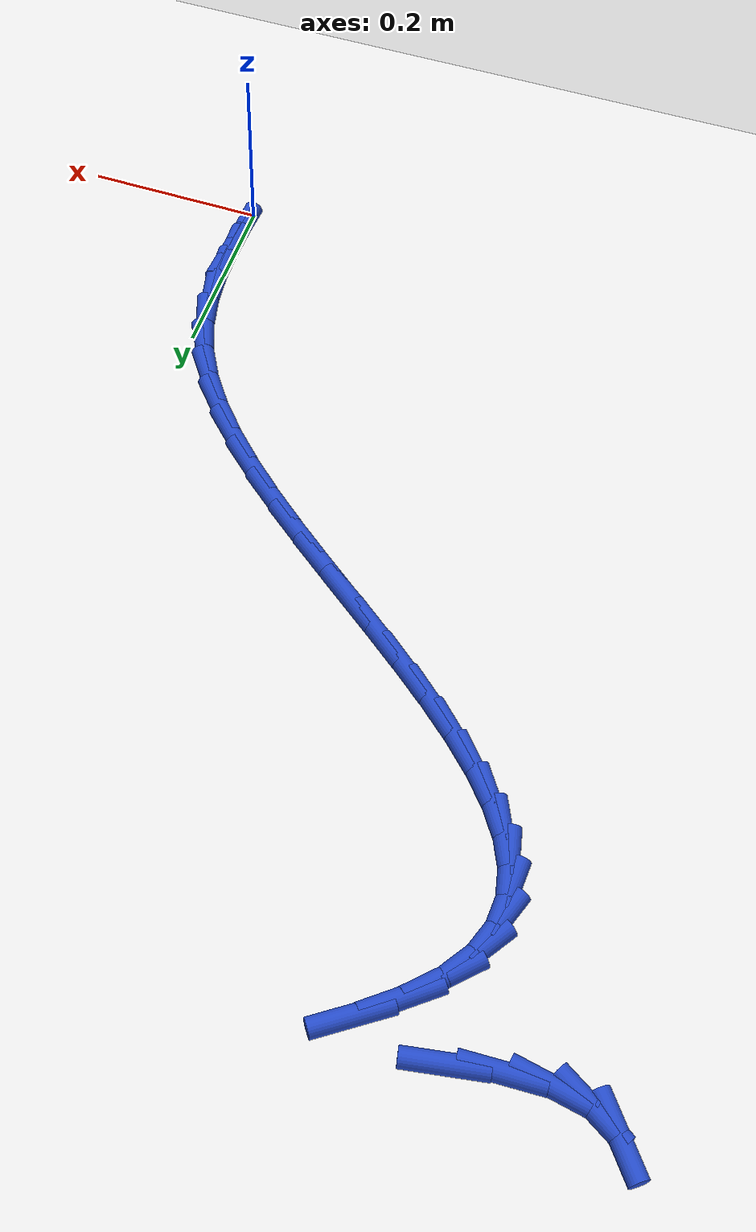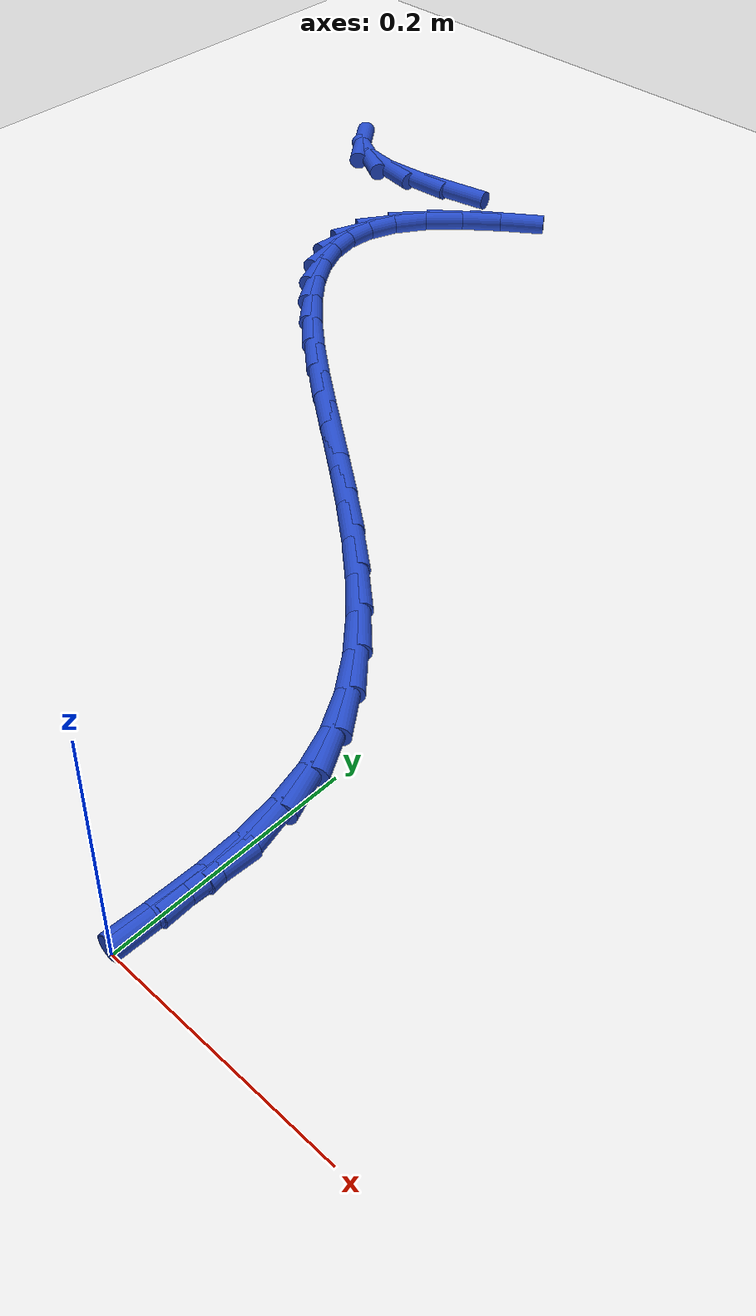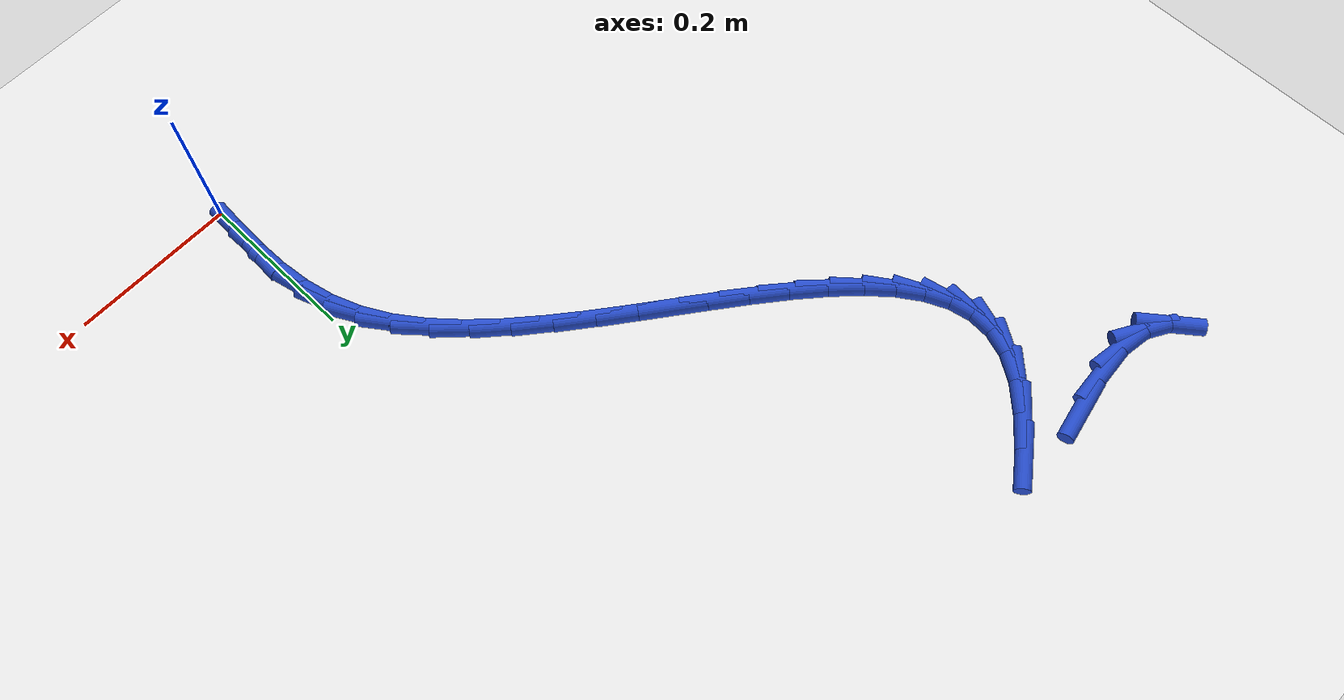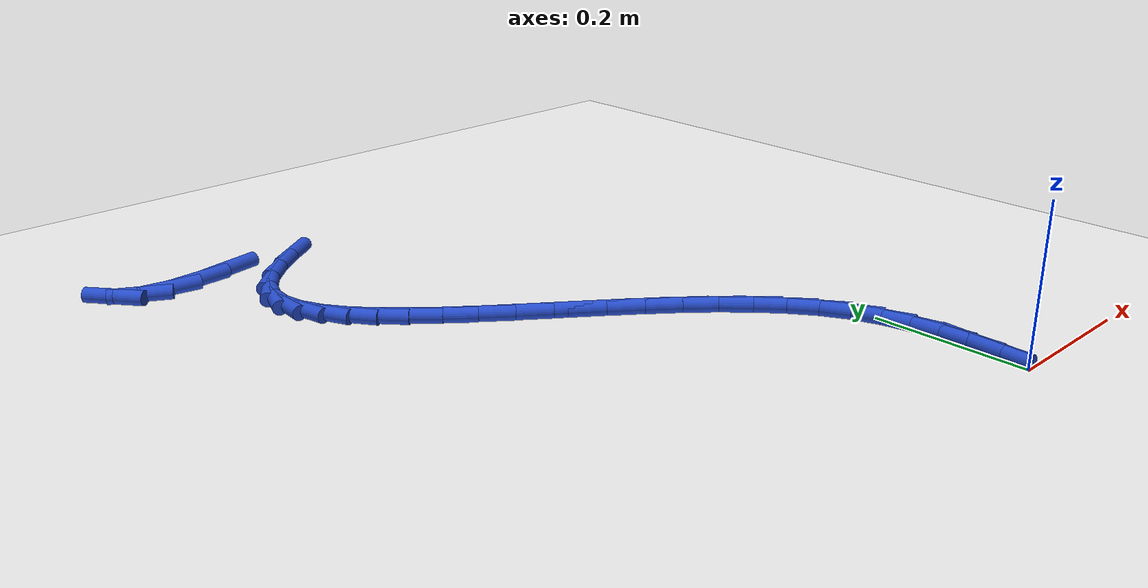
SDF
<sdf version="1.6">
 <world name="default">
  <model name="ground_plane">
   <static>1</static>
   <link name="link">
    <collision name="collision">
     <geometry><plane><normal>0 0 1</normal><size>100 100</size></plane></geometry>
     <surface><friction><ode><mu>100</mu><mu2>50</mu2></ode></friction></surface>
    </collision>
    <visual name="visual">
     <cast_shadows>0</cast_shadows>
     <geometry><plane><normal>0 0 1</normal><size>100 100</size></plane></geometry>
     <material>
      <script><uri>file://media/materials/scripts/gazebo.material</uri><name>Gazebo/WhiteGlow</name></script>
     </material>
    </visual>
   </link>
  </model>
  <model name="line">
   <link name="link_1">
    <pose>0.0021283104545397552 0.03722938613280561 0.01 0 1.57 1.545094357215458</pose>
    <collision name="collision">
     <geometry><cylinder><radius>0.01</radius><length>0.08</length></cylinder></geometry>
    </collision>
    <visual name="visual">
     <material>
      <script><name>Gazebo/Blue</name><uri>file://media/materials/scripts/gazebo.material</uri></script>
     </material>
     <geometry><cylinder><radius>0.01</radius><length>0.08</length></cylinder></geometry>
    </visual>
   </link>
   <link name="link_2">
    <pose>0.0030865516204879313 0.07450396743628847 0.01 0 1.57 -1.5394861746280042</pose>
    <collision name="collision">
     <geometry><cylinder><radius>0.01</radius><length>0.08</length></cylinder></geometry>
    </collision>
    <visual name="visual">
     <material>
      <script><name>Gazebo/Blue</name><uri>file://media/materials/scripts/gazebo.material</uri></script>
     </material>
     <geometry><cylinder><radius>0.01</radius><length>0.08</length></cylinder></geometry>
    </visual>
   </link>
   <link name="link_3">
    <pose>0.001924385931921374 0.11160969246168757 0.01 0 1.57 -1.4560363001852206</pose>
    <collision name="collision">
     <geometry><cylinder><radius>0.01</radius><length>0.08</length></cylinder></geometry>
    </collision>
    <visual name="visual">
     <material>
      <script><name>Gazebo/Blue</name><uri>file://media/materials/scripts/gazebo.material</uri></script>
     </material>
     <geometry><cylinder><radius>0.01</radius><length>0.08</length></cylinder></geometry>
    </visual>
   </link>
   <link name="link_4">
    <pose>-0.0023085241770830506 0.14833250976024182 0.01 0 1.57 -1.346173205877461</pose>
    <collision name="collision">
     <geometry><cylinder><radius>0.01</radius><length>0.08</length></cylinder></geometry>
    </collision>
    <visual name="visual">
     <material>
      <script><name>Gazebo/Blue</name><uri>file://media/materials/scripts/gazebo.material</uri></script>
     </material>
     <geometry><cylinder><radius>0.01</radius><length>0.08</length></cylinder></geometry>
    </visual>
   </link>
   <link name="link_5">
    <pose>-0.010562516272448468 0.1844583678831901 0.01 0 1.57 -1.212464053454606</pose>
    <collision name="collision">
     <geometry><cylinder><radius>0.01</radius><length>0.08</length></cylinder></geometry>
    </collision>
    <visual name="visual">
     <material>
      <script><name>Gazebo/Blue</name><uri>file://media/materials/scripts/gazebo.material</uri></script>
     </material>
     <geometry><cylinder><radius>0.01</radius><length>0.08</length></cylinder></geometry>
    </visual>
   </link>
   <link name="link_6">
    <pose>-0.02378792792009802 0.21977321538177125 0.01 0 1.57 -1.0671118016401824</pose>
    <collision name="collision">
     <geometry><cylinder><radius>0.01</radius><length>0.08</length></cylinder></geometry>
    </collision>
    <visual name="visual">
     <material>
      <script><name>Gazebo/Blue</name><uri>file://media/materials/scripts/gazebo.material</uri></script>
     </material>
     <geometry><cylinder><radius>0.01</radius><length>0.08</length></cylinder></geometry>
    </visual>
   </link>
   <link name="link_7">
    <pose>-0.04270590388653813 0.25410110925956286 0.01 0 1.57 -0.9438012129007117</pose>
    <collision name="collision">
     <geometry><cylinder><radius>0.01</radius><length>0.08</length></cylinder></geometry>
    </collision>
    <visual name="visual">
     <material>
      <script><name>Gazebo/Blue</name><uri>file://media/materials/scripts/gazebo.material</uri></script>
     </material>
     <geometry><cylinder><radius>0.01</radius><length>0.08</length></cylinder></geometry>
    </visual>
   </link>
   <link name="link_8">
    <pose>-0.06687477195608788 0.28745945096925546 0.01 0 1.57 -0.8484661515114426</pose>
    <collision name="collision">
     <geometry><cylinder><radius>0.01</radius><length>0.08</length></cylinder></geometry>
    </collision>
    <visual name="visual">
     <material>
      <script><name>Gazebo/Blue</name><uri>file://media/materials/scripts/gazebo.material</uri></script>
     </material>
     <geometry><cylinder><radius>0.01</radius><length>0.08</length></cylinder></geometry>
    </visual>
   </link>
   <link name="link_9">
    <pose>-0.09548497718444317 0.319926810732653 0.01 0 1.57 -0.7762137547601449</pose>
    <collision name="collision">
     <geometry><cylinder><radius>0.01</radius><length>0.08</length></cylinder></geometry>
    </collision>
    <visual name="visual">
     <material>
      <script><name>Gazebo/Blue</name><uri>file://media/materials/scripts/gazebo.material</uri></script>
     </material>
     <geometry><cylinder><radius>0.01</radius><length>0.08</length></cylinder></geometry>
    </visual>
   </link>
   <link name="link_10">
    <pose>-0.12772682019952733 0.3515817827859215 0.01 0 1.57 -0.7226994354463756</pose>
    <collision name="collision">
     <geometry><cylinder><radius>0.01</radius><length>0.08</length></cylinder></geometry>
    </collision>
    <visual name="visual">
     <material>
      <script><name>Gazebo/Blue</name><uri>file://media/materials/scripts/gazebo.material</uri></script>
     </material>
     <geometry><cylinder><radius>0.01</radius><length>0.08</length></cylinder></geometry>
    </visual>
   </link>
   <link name="link_11">
    <pose>-0.1627906016292635 0.38250296136522677 0.01 0 1.57 -0.6846145775217288</pose>
    <collision name="collision">
     <geometry><cylinder><radius>0.01</radius><length>0.08</length></cylinder></geometry>
    </collision>
    <visual name="visual">
     <material>
      <script><name>Gazebo/Blue</name><uri>file://media/materials/scripts/gazebo.material</uri></script>
     </material>
     <geometry><cylinder><radius>0.01</radius><length>0.08</length></cylinder></geometry>
    </visual>
   </link>
   <link name="link_12">
    <pose>-0.19986662210157494 0.4127689407067348 0.01 0 1.57 -0.659693345565341</pose>
    <collision name="collision">
     <geometry><cylinder><radius>0.01</radius><length>0.08</length></cylinder></geometry>
    </collision>
    <visual name="visual">
     <material>
      <script><name>Gazebo/Blue</name><uri>file://media/materials/scripts/gazebo.material</uri></script>
     </material>
     <geometry><cylinder><radius>0.01</radius><length>0.08</length></cylinder></geometry>
    </visual>
   </link>
   <link name="link_13">
    <pose>-0.2381451822443848 0.4424583150466118 0.01 0 1.57 -0.646602122247678</pose>
    <collision name="collision">
     <geometry><cylinder><radius>0.01</radius><length>0.08</length></cylinder></geometry>
    </collision>
    <visual name="visual">
     <material>
      <script><name>Gazebo/Blue</name><uri>file://media/materials/scripts/gazebo.material</uri></script>
     </material>
     <geometry><cylinder><radius>0.01</radius><length>0.08</length></cylinder></geometry>
    </visual>
   </link>
   <link name="link_14">
    <pose>-0.27681658268561626 0.4716496786210234 0.01 0 1.57 -0.644855550162026</pose>
    <collision name="collision">
     <geometry><cylinder><radius>0.01</radius><length>0.08</length></cylinder></geometry>
    </collision>
    <visual name="visual">
     <material>
      <script><name>Gazebo/Blue</name><uri>file://media/materials/scripts/gazebo.material</uri></script>
     </material>
     <geometry><cylinder><radius>0.01</radius><length>0.08</length></cylinder></geometry>
    </visual>
   </link>
   <link name="link_15">
    <pose>-0.3150711240531926 0.5004216256661359 0.01 0 1.57 -0.6548137804907926</pose>
    <collision name="collision">
     <geometry><cylinder><radius>0.01</radius><length>0.08</length></cylinder></geometry>
    </collision>
    <visual name="visual">
     <material>
      <script><name>Gazebo/Blue</name><uri>file://media/materials/scripts/gazebo.material</uri></script>
     </material>
     <geometry><cylinder><radius>0.01</radius><length>0.08</length></cylinder></geometry>
    </visual>
   </link>
   <link name="link_16">
    <pose>-0.3520991069750369 0.5288527504181149 0.01 0 1.57 -0.67779197126777</pose>
    <collision name="collision">
     <geometry><cylinder><radius>0.01</radius><length>0.08</length></cylinder></geometry>
    </collision>
    <visual name="visual">
     <material>
      <script><name>Gazebo/Blue</name><uri>file://media/materials/scripts/gazebo.material</uri></script>
     </material>
     <geometry><cylinder><radius>0.01</radius><length>0.08</length></cylinder></geometry>
    </visual>
   </link>
   <link name="link_17">
    <pose>-0.3870908320790724 0.5570216471131264 0.01 0 1.57 -0.7163176116048785</pose>
    <collision name="collision">
     <geometry><cylinder><radius>0.01</radius><length>0.08</length></cylinder></geometry>
    </collision>
    <visual name="visual">
     <material>
      <script><name>Gazebo/Blue</name><uri>file://media/materials/scripts/gazebo.material</uri></script>
     </material>
     <geometry><cylinder><radius>0.01</radius><length>0.08</length></cylinder></geometry>
    </visual>
   </link>
   <link name="link_18">
    <pose>-0.41923659999322227 0.5850069099873364 0.01 0 1.57 -0.7745792766399525</pose>
    <collision name="collision">
     <geometry><cylinder><radius>0.01</radius><length>0.08</length></cylinder></geometry>
    </collision>
    <visual name="visual">
     <material>
      <script><name>Gazebo/Blue</name><uri>file://media/materials/scripts/gazebo.material</uri></script>
     </material>
     <geometry><cylinder><radius>0.01</radius><length>0.08</length></cylinder></geometry>
    </visual>
   </link>
   <link name="link_19">
    <pose>-0.44772671134541 0.6128871332769112 0.01 0 1.57 -0.8590720318524332</pose>
    <collision name="collision">
     <geometry><cylinder><radius>0.01</radius><length>0.08</length></cylinder></geometry>
    </collision>
    <visual name="visual">
     <material>
      <script><name>Gazebo/Blue</name><uri>file://media/materials/scripts/gazebo.material</uri></script>
     </material>
     <geometry><cylinder><radius>0.01</radius><length>0.08</length></cylinder></geometry>
    </visual>
   </link>
   <link name="link_20">
    <pose>-0.4717514667635585 0.6407409112180167 0.01 0 1.57 -0.9791866043591809</pose>
    <collision name="collision">
     <geometry><cylinder><radius>0.01</radius><length>0.08</length></cylinder></geometry>
    </collision>
    <visual name="visual">
     <material>
      <script><name>Gazebo/Blue</name><uri>file://media/materials/scripts/gazebo.material</uri></script>
     </material>
     <geometry><cylinder><radius>0.01</radius><length>0.08</length></cylinder></geometry>
    </visual>
   </link>
   <link name="link_21">
    <pose>-0.49050116687559087 0.6686468380468182 0.01 0 1.57 -1.14650642508544</pose>
    <collision name="collision">
     <geometry><cylinder><radius>0.01</radius><length>0.08</length></cylinder></geometry>
    </collision>
    <visual name="visual">
     <material>
      <script><name>Gazebo/Blue</name><uri>file://media/materials/scripts/gazebo.material</uri></script>
     </material>
     <geometry><cylinder><radius>0.01</radius><length>0.08</length></cylinder></geometry>
    </visual>
   </link>
   <link name="link_22">
    <pose>-0.5031661123094305 0.6966835079994823 0.01 0 1.57 -1.369275297648172</pose>
    <collision name="collision">
     <geometry><cylinder><radius>0.01</radius><length>0.08</length></cylinder></geometry>
    </collision>
    <visual name="visual">
     <material>
      <script><name>Gazebo/Blue</name><uri>file://media/materials/scripts/gazebo.material</uri></script>
     </material>
     <geometry><cylinder><radius>0.01</radius><length>0.08</length></cylinder></geometry>
    </visual>
   </link>
   <link name="link_23">
    <pose>-0.5089366036930008 0.7249295153121751 0.01 0 1.57 1.5031326881236624</pose>
    <collision name="collision">
     <geometry><cylinder><radius>0.01</radius><length>0.08</length></cylinder></geometry>
    </collision>
    <visual name="visual">
     <material>
      <script><name>Gazebo/Blue</name><uri>file://media/materials/scripts/gazebo.material</uri></script>
     </material>
     <geometry><cylinder><radius>0.01</radius><length>0.08</length></cylinder></geometry>
    </visual>
   </link>
   <link name="link_24">
    <pose>-0.5070029416542247 0.753463454221062 0.01 0 1.57 1.2239135748374024</pose>
    <collision name="collision">
     <geometry><cylinder><radius>0.01</radius><length>0.08</length></cylinder></geometry>
    </collision>
    <visual name="visual">
     <material>
      <script><name>Gazebo/Blue</name><uri>file://media/materials/scripts/gazebo.material</uri></script>
     </material>
     <geometry><cylinder><radius>0.01</radius><length>0.08</length></cylinder></geometry>
    </visual>
   </link>
   <link name="link_25">
    <pose>-0.4965554268210252 0.7823639189623093 0.01 0 1.57 0.9779181011260594</pose>
    <collision name="collision">
     <geometry><cylinder><radius>0.01</radius><length>0.08</length></cylinder></geometry>
    </collision>
    <visual name="visual">
     <material>
      <script><name>Gazebo/Blue</name><uri>file://media/materials/scripts/gazebo.material</uri></script>
     </material>
     <geometry><cylinder><radius>0.01</radius><length>0.08</length></cylinder></geometry>
    </visual>
   </link>
   <link name="link_26">
    <pose>-0.47678435982132594 0.811709503772083 0.01 0 1.57 0.7888293519062755</pose>
    <collision name="collision">
     <geometry><cylinder><radius>0.01</radius><length>0.08</length></cylinder></geometry>
    </collision>
    <visual name="visual">
     <material>
      <script><name>Gazebo/Blue</name><uri>file://media/materials/scripts/gazebo.material</uri></script>
     </material>
     <geometry><cylinder><radius>0.01</radius><length>0.08</length></cylinder></geometry>
    </visual>
   </link>
   <link name="link_27">
    <pose>-0.4472249907502722 0.8414724195841345 0.01 0 1.57 0.675325815892175</pose>
    <collision name="collision">
     <geometry><cylinder><radius>0.01</radius><length>0.08</length></cylinder></geometry>
    </collision>
    <visual name="visual">
     <material>
      <script><name>Gazebo/Blue</name><uri>file://media/materials/scripts/gazebo.material</uri></script>
     </material>
     <geometry><cylinder><radius>0.01</radius><length>0.08</length></cylinder></geometry>
    </visual>
   </link>
   <link name="link_28">
    <pose>-0.4109363943716504 0.8705381207461117 0.01 0 1.57 0.612323316226513</pose>
    <collision name="collision">
     <geometry><cylinder><radius>0.01</radius><length>0.08</length></cylinder></geometry>
    </collision>
    <visual name="visual">
     <material>
      <script><name>Gazebo/Blue</name><uri>file://media/materials/scripts/gazebo.material</uri></script>
     </material>
     <geometry><cylinder><radius>0.01</radius><length>0.08</length></cylinder></geometry>
    </visual>
   </link>
   <link name="link_38">
    <pose>-0.4982788994223373 0.883195128704247 0.01 0 1.57 0.18473556994100826</pose>
    <collision name="collision">
     <geometry><cylinder><radius>0.01</radius><length>0.08</length></cylinder></geometry>
    </collision>
    <visual name="visual">
     <material>
      <script><name>Gazebo/Blue</name><uri>file://media/materials/scripts/gazebo.material</uri></script>
     </material>
     <geometry><cylinder><radius>0.01</radius><length>0.08</length></cylinder></geometry>
    </visual>
   </link>
   <link name="link_39">
    <pose>-0.5462084383427154 0.8742387196403149 0.01 0 1.57 0.06031211058189526</pose>
    <collision name="collision">
     <geometry><cylinder><radius>0.01</radius><length>0.08</length></cylinder></geometry>
    </collision>
    <visual name="visual">
     <material>
      <script><name>Gazebo/Blue</name><uri>file://media/materials/scripts/gazebo.material</uri></script>
     </material>
     <geometry><cylinder><radius>0.01</radius><length>0.08</length></cylinder></geometry>
    </visual>
   </link>
   <link name="link_40">
    <pose>-0.58963068983764 0.8716166519337875 0.01 0 1.57 -0.16489002332715347</pose>
    <collision name="collision">
     <geometry><cylinder><radius>0.01</radius><length>0.08</length></cylinder></geometry>
    </collision>
    <visual name="visual">
     <material>
      <script><name>Gazebo/Blue</name><uri>file://media/materials/scripts/gazebo.material</uri></script>
     </material>
     <geometry><cylinder><radius>0.01</radius><length>0.08</length></cylinder></geometry>
    </visual>
   </link>
   <link name="link_41">
    <pose>-0.6252652395317398 0.8775462709072951 0.01 0 1.57 -0.5295911473238184</pose>
    <collision name="collision">
     <geometry><cylinder><radius>0.01</radius><length>0.08</length></cylinder></geometry>
    </collision>
    <visual name="visual">
     <material>
      <script><name>Gazebo/Blue</name><uri>file://media/materials/scripts/gazebo.material</uri></script>
     </material>
     <geometry><cylinder><radius>0.01</radius><length>0.08</length></cylinder></geometry>
    </visual>
   </link>
   <link name="link_42">
    <pose>-0.6515866346845763 0.8929539715767156 0.01 0 1.57 -0.9121462160667123</pose>
    <collision name="collision">
     <geometry><cylinder><radius>0.01</radius><length>0.08</length></cylinder></geometry>
    </collision>
    <visual name="visual">
     <material>
      <script><name>Gazebo/Blue</name><uri>file://media/materials/scripts/gazebo.material</uri></script>
     </material>
     <geometry><cylinder><radius>0.01</radius><length>0.08</length></cylinder></geometry>
    </visual>
   </link>
   <link name="link_281">
    <pose>0.0023153835755409698 0.03727203264924245 0.01 0 1.57 1.5105137062600964</pose>
    <collision name="collision">
     <geometry><cylinder><radius>0.01</radius><length>0.08</length></cylinder></geometry>
    </collision>
    <visual name="visual">
     <material>
      <script><name>Gazebo/Blue</name><uri>file://media/materials/scripts/gazebo.material</uri></script>
     </material>
     <geometry><cylinder><radius>0.01</radius><length>0.08</length></cylinder></geometry>
    </visual>
   </link>
   <link name="link_282">
    <pose>0.00458313658849763 0.07484513956778292 0.01 0 1.57 1.5096377668469034</pose>
    <collision name="collision">
     <geometry><cylinder><radius>0.01</radius><length>0.08</length></cylinder></geometry>
    </collision>
    <visual name="visual">
     <material>
      <script><name>Gazebo/Blue</name><uri>file://media/materials/scripts/gazebo.material</uri></script>
     </material>
     <geometry><cylinder><radius>0.01</radius><length>0.08</length></cylinder></geometry>
    </visual>
   </link>
  </model>
 </world>
</sdf>
